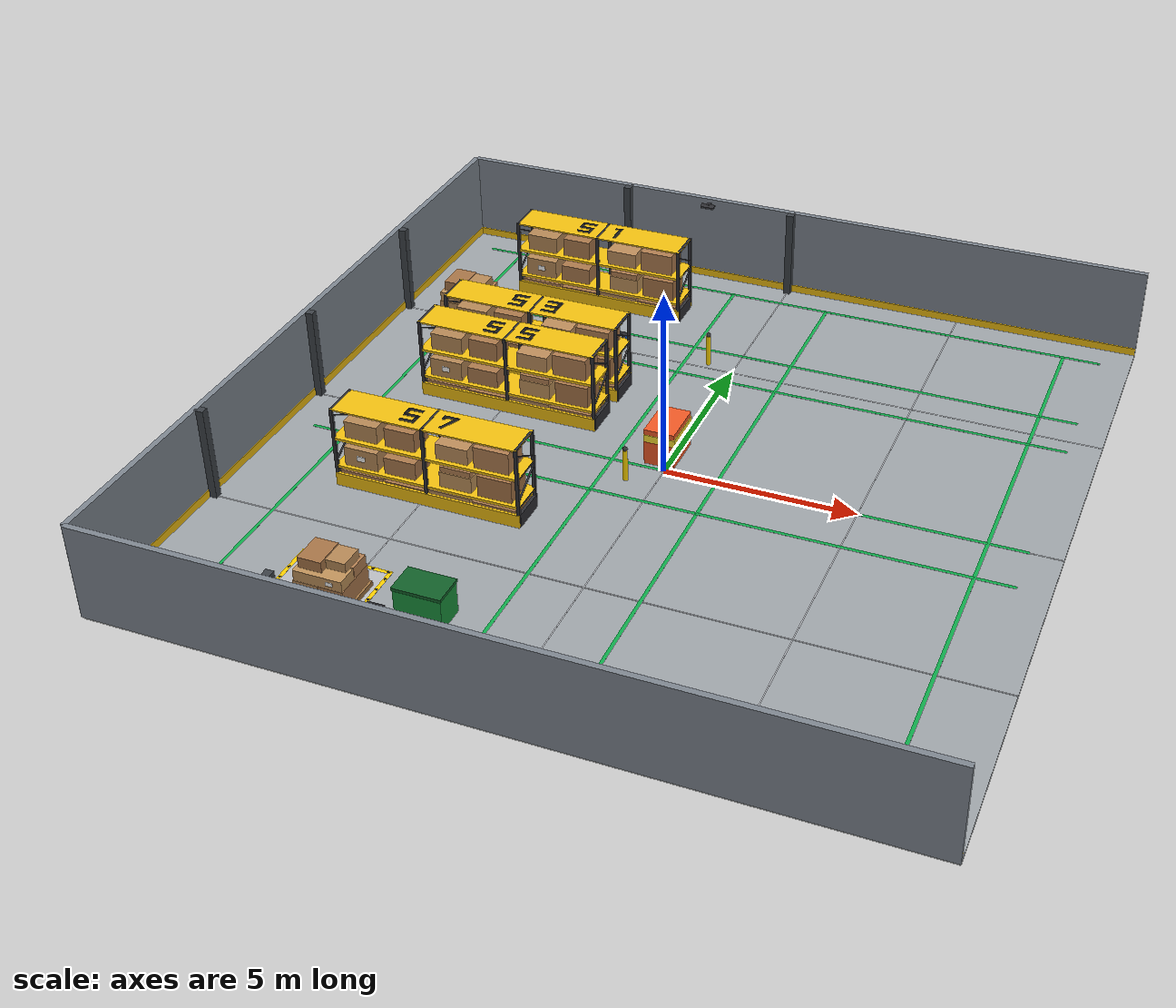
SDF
<sdf version="1.9">
 <world name="warehouse">
  <model name="warehouse_floor">
   <static>true</static>
   <pose>0 0 -0.05 0 0 0</pose>
   <link name="floor_link">
    <collision name="col">
     <geometry><box><size>20.0 20.0 0.1</size></box></geometry>
     <surface><friction><ode><mu>1.0</mu><mu2>1.0</mu2></ode></friction></surface>
    </collision>
    <visual name="slab">
     <geometry><box><size>20.0 20.0 0.1</size></box></geometry>
     <material>
      <ambient>0.55 0.57 0.59 1.0</ambient>
      <diffuse>0.63 0.65 0.67 1.0</diffuse>
      <specular>0.10 0.10 0.10 1.0</specular>
     </material>
    </visual>
    <visual name="grid_h1">
     <pose>0 -5.0 0.052 0 0 0</pose>
     <geometry><box><size>20.0 0.03 0.002</size></box></geometry>
     <material><ambient>0.62 0.63 0.65 1</ambient><diffuse>0.68 0.69 0.71 1</diffuse></material>
    </visual>
    <visual name="grid_h2">
     <pose>0 0.0 0.052 0 0 0</pose>
     <geometry><box><size>20.0 0.03 0.002</size></box></geometry>
     <material><ambient>0.62 0.63 0.65 1</ambient><diffuse>0.68 0.69 0.71 1</diffuse></material>
    </visual>
    <visual name="grid_h3">
     <pose>0 5.0 0.052 0 0 0</pose>
     <geometry><box><size>20.0 0.03 0.002</size></box></geometry>
     <material><ambient>0.62 0.63 0.65 1</ambient><diffuse>0.68 0.69 0.71 1</diffuse></material>
    </visual>
    <visual name="grid_v1">
     <pose>-5.0 0 0.052 0 0 0</pose>
     <geometry><box><size>0.03 20.0 0.002</size></box></geometry>
     <material><ambient>0.62 0.63 0.65 1</ambient><diffuse>0.68 0.69 0.71 1</diffuse></material>
    </visual>
    <visual name="grid_v2">
     <pose>0.0 0 0.052 0 0 0</pose>
     <geometry><box><size>0.03 20.0 0.002</size></box></geometry>
     <material><ambient>0.62 0.63 0.65 1</ambient><diffuse>0.68 0.69 0.71 1</diffuse></material>
    </visual>
    <visual name="grid_v3">
     <pose>5.0 0 0.052 0 0 0</pose>
     <geometry><box><size>0.03 20.0 0.002</size></box></geometry>
     <material><ambient>0.62 0.63 0.65 1</ambient><diffuse>0.68 0.69 0.71 1</diffuse></material>
    </visual>
    <visual name="lane_a1_t">
     <pose>0 9.1 0.055 0 0 0</pose>
     <geometry><box><size>18.4 0.09 0.002</size></box></geometry>
     <material><ambient>0.04 0.52 0.22 1</ambient><diffuse>0.06 0.68 0.30 1</diffuse></material>
    </visual>
    <visual name="lane_a1_b">
     <pose>0 5.9 0.055 0 0 0</pose>
     <geometry><box><size>18.4 0.09 0.002</size></box></geometry>
     <material><ambient>0.04 0.52 0.22 1</ambient><diffuse>0.06 0.68 0.30 1</diffuse></material>
    </visual>
    <visual name="lane_a2_t">
     <pose>0 4.5 0.055 0 0 0</pose>
     <geometry><box><size>18.4 0.09 0.002</size></box></geometry>
     <material><ambient>0.04 0.52 0.22 1</ambient><diffuse>0.06 0.68 0.30 1</diffuse></material>
    </visual>
    <visual name="lane_a2_b">
     <pose>0 0.0 0.055 0 0 0</pose>
     <geometry><box><size>18.4 0.09 0.002</size></box></geometry>
     <material><ambient>0.04 0.52 0.22 1</ambient><diffuse>0.06 0.68 0.30 1</diffuse></material>
    </visual>
    <visual name="lane_a3_t">
     <pose>0 -1.4 0.055 0 0 0</pose>
     <geometry><box><size>18.4 0.09 0.002</size></box></geometry>
     <material><ambient>0.04 0.52 0.22 1</ambient><diffuse>0.06 0.68 0.30 1</diffuse></material>
    </visual>
    <visual name="lane_cv_l">
     <pose>-1.4 0 0.055 0 0 0</pose>
     <geometry><box><size>0.09 18.2 0.002</size></box></geometry>
     <material><ambient>0.04 0.52 0.22 1</ambient><diffuse>0.06 0.68 0.30 1</diffuse></material>
    </visual>
    <visual name="lane_cv_r">
     <pose>1.4 0 0.055 0 0 0</pose>
     <geometry><box><size>0.09 18.2 0.002</size></box></geometry>
     <material><ambient>0.04 0.52 0.22 1</ambient><diffuse>0.06 0.68 0.30 1</diffuse></material>
    </visual>
    <visual name="lane_bp_w">
     <pose>-8.2 0 0.055 0 0 0</pose>
     <geometry><box><size>0.09 18.2 0.002</size></box></geometry>
     <material><ambient>0.04 0.52 0.22 1</ambient><diffuse>0.06 0.68 0.30 1</diffuse></material>
    </visual>
    <visual name="lane_bp_e">
     <pose>8.2 0 0.055 0 0 0</pose>
     <geometry><box><size>0.09 18.2 0.002</size></box></geometry>
     <material><ambient>0.04 0.52 0.22 1</ambient><diffuse>0.06 0.68 0.30 1</diffuse></material>
    </visual>
   </link>
  </model>
  <model name="north_wall">
   <static>true</static>
   <pose>0 10 1.25 0 0 0</pose>
   <link name="link">
    <collision name="col"><geometry><box><size>20.0 0.15 2.5</size></box></geometry></collision>
    <visual name="vis">
     <geometry><box><size>20.0 0.15 2.5</size></box></geometry>
     <material><ambient>0.40 0.43 0.46 1</ambient><diffuse>0.50 0.53 0.57 1</diffuse></material>
    </visual>
    <visual name="skirt">
     <pose>0 -0.08 -1.15 0 0 0</pose>
     <geometry><box><size>20.0 0.025 0.22</size></box></geometry>
     <material><ambient>0.88 0.68 0.04 1</ambient><diffuse>0.96 0.76 0.06 1</diffuse></material>
    </visual>
   </link>
  </model>
  <model name="south_wall">
   <static>true</static>
   <pose>0 -10 1.25 0 0 0</pose>
   <link name="link">
    <collision name="col"><geometry><box><size>20.0 0.15 2.5</size></box></geometry></collision>
    <visual name="vis">
     <geometry><box><size>20.0 0.15 2.5</size></box></geometry>
     <material><ambient>0.40 0.43 0.46 1</ambient><diffuse>0.50 0.53 0.57 1</diffuse></material>
    </visual>
    <visual name="skirt">
     <pose>0 0.08 -1.15 0 0 0</pose>
     <geometry><box><size>20.0 0.025 0.22</size></box></geometry>
     <material><ambient>0.88 0.68 0.04 1</ambient><diffuse>0.96 0.76 0.06 1</diffuse></material>
    </visual>
   </link>
  </model>
  <model name="west_wall">
   <static>true</static>
   <pose>-10.0 0 1.25 0 0 0</pose>
   <link name="link">
    <collision name="col"><geometry><box><size>0.15 20.0 2.5</size></box></geometry></collision>
    <visual name="vis">
     <geometry><box><size>0.15 20.0 2.5</size></box></geometry>
     <material><ambient>0.40 0.43 0.46 1</ambient><diffuse>0.50 0.53 0.57 1</diffuse></material>
    </visual>
    <visual name="skirt">
     <pose>0.08 0 -1.15 0 0 0</pose>
     <geometry><box><size>0.025 20.0 0.22</size></box></geometry>
     <material><ambient>0.88 0.68 0.04 1</ambient><diffuse>0.96 0.76 0.06 1</diffuse></material>
    </visual>
   </link>
  </model>
  <model name="pillar_n_l">
   <static>true</static>
   <pose>-5.0 9.85 1.25 0 0 0</pose>
   <link name="link">
    <visual name="vis">
     <geometry><box><size>0.20 0.25 2.5</size></box></geometry>
     <material><ambient>0.18 0.20 0.22 1</ambient><diffuse>0.24 0.26 0.28 1</diffuse></material>
    </visual>
   </link>
  </model>
  <model name="pillar_n_c">
   <static>true</static>
   <pose>0.0 9.85 1.25 0 0 0</pose>
   <link name="link">
    <visual name="vis">
     <geometry><box><size>0.20 0.25 2.5</size></box></geometry>
     <material><ambient>0.18 0.20 0.22 1</ambient><diffuse>0.24 0.26 0.28 1</diffuse></material>
    </visual>
   </link>
  </model>
  <model name="pillar_s_l">
   <static>true</static>
   <pose>-5.0 -9.85 1.25 0 0 0</pose>
   <link name="link">
    <visual name="vis">
     <geometry><box><size>0.20 0.25 2.5</size></box></geometry>
     <material><ambient>0.18 0.20 0.22 1</ambient><diffuse>0.24 0.26 0.28 1</diffuse></material>
    </visual>
   </link>
  </model>
  <model name="pillar_w_n">
   <static>true</static>
   <pose>-9.85 5.00 1.25 0 0 0</pose>
   <link name="link">
    <visual name="vis">
     <geometry><box><size>0.25 0.20 2.5</size></box></geometry>
     <material><ambient>0.18 0.20 0.22 1</ambient><diffuse>0.24 0.26 0.28 1</diffuse></material>
    </visual>
   </link>
  </model>
  <model name="pillar_w_s">
   <static>true</static>
   <pose>-9.85 -5.00 1.25 0 0 0</pose>
   <link name="link">
    <visual name="vis">
     <geometry><box><size>0.25 0.20 2.5</size></box></geometry>
     <material><ambient>0.18 0.20 0.22 1</ambient><diffuse>0.24 0.26 0.28 1</diffuse></material>
    </visual>
   </link>
  </model>
  <model name="pillar_w_c">
   <static>true</static>
   <pose>-9.85 0.0 1.25 0 0 0</pose>
   <link name="link">
    <visual name="vis">
     <geometry><box><size>0.25 0.20 2.5</size></box></geometry>
     <material><ambient>0.18 0.20 0.22 1</ambient><diffuse>0.24 0.26 0.28 1</diffuse></material>
    </visual>
   </link>
  </model>
  <model name="fixture_wall_n1">
   <static>true</static>
   <pose>-2.5 9.92 2.35 0 0 0</pose>
   <link name="link">
    <visual name="bracket">
     <pose>0 -0.06 0 0 0 0</pose>
     <geometry><box><size>0.12 0.12 0.08</size></box></geometry>
     <material><ambient>0.12 0.12 0.14 1</ambient><diffuse>0.18 0.18 0.20 1</diffuse></material>
    </visual>
    <visual name="lamp">
     <pose>0 -0.14 -0.02 0.3 0 0</pose>
     <geometry><box><size>0.40 0.14 0.06</size></box></geometry>
     <material><ambient>0.12 0.12 0.14 1</ambient><diffuse>0.18 0.18 0.20 1</diffuse></material>
    </visual>
    <visual name="led_strip">
     <pose>0 -0.14 -0.05 0.3 0 0</pose>
     <geometry><box><size>0.36 0.10 0.01</size></box></geometry>
     <material>
      <ambient>0.9 0.9 0.85 1</ambient>
      <diffuse>1.0 1.0 0.9 1</diffuse>
      <emissive>0.95 0.95 0.85 1</emissive>
     </material>
    </visual>
   </link>
  </model>
  <model name="fixture_wall_s1">
   <static>true</static>
   <pose>-2.5 -9.92 2.35 0 0 3.14159</pose>
   <link name="link">
    <visual name="bracket">
     <pose>0 -0.06 0 0 0 0</pose>
     <geometry><box><size>0.12 0.12 0.08</size></box></geometry>
     <material><ambient>0.12 0.12 0.14 1</ambient><diffuse>0.18 0.18 0.20 1</diffuse></material>
    </visual>
    <visual name="lamp">
     <pose>0 -0.14 -0.02 0.3 0 0</pose>
     <geometry><box><size>0.40 0.14 0.06</size></box></geometry>
     <material><ambient>0.12 0.12 0.14 1</ambient><diffuse>0.18 0.18 0.20 1</diffuse></material>
    </visual>
    <visual name="led_strip">
     <pose>0 -0.14 -0.05 0.3 0 0</pose>
     <geometry><box><size>0.36 0.10 0.01</size></box></geometry>
     <material>
      <ambient>0.9 0.9 0.85 1</ambient>
      <diffuse>1.0 1.0 0.9 1</diffuse>
      <emissive>0.95 0.95 0.85 1</emissive>
     </material>
    </visual>
   </link>
  </model>
  <include><uri>model://shelf</uri><name>shelf_rack_NW1</name><pose>-4.8 7.5 0 0 0 0</pose></include>
  <include><uri>model://shelf</uri><name>shelf_rack_NW2</name><pose>-4.8 3.0 0 0 0 0</pose></include>
  <include><uri>model://shelf</uri><name>shelf_rack_SW2</name><pose>-4.8 1.5 0 0 0 0</pose></include>
  <include><uri>model://shelf</uri><name>shelf_rack_SW1</name><pose>-4.8 -3.0 0 0 0 0</pose></include>
  <include><uri>model://pallet_stack</uri><name>pallet_tower_1</name><pose>-5.2 -7.3 0 0 0 0</pose></include>
  <include><uri>model://pallet_stack</uri><name>pallet_tower_3</name><pose>-8.0 5.25 0 0 0 0</pose></include>
  <include>
   <uri>model://dumpster</uri>
   <name>green_dumpster_container</name>
   <pose>-2.8 -7.3 0 0 0 0</pose>
  </include>
  <model name="bollard_l1">
   <static>true</static>
   <pose>-0.75 5.2 0.45 0 0 0</pose>
   <link name="link">
    <collision name="col">
     <geometry><cylinder><radius>0.06</radius><length>0.9</length></cylinder></geometry>
    </collision>
    <visual name="vis">
     <geometry><cylinder><radius>0.06</radius><length>0.9</length></cylinder></geometry>
     <material><ambient>0.95 0.78 0.0 1</ambient><diffuse>1.0 0.84 0.0 1</diffuse></material>
    </visual>
    <visual name="cap">
     <pose>0 0 0.46 0 0 0</pose>
     <geometry><sphere><radius>0.065</radius></sphere></geometry>
     <material><ambient>0.15 0.15 0.15 1</ambient><diffuse>0.20 0.20 0.20 1</diffuse></material>
    </visual>
   </link>
  </model>
  <model name="bollard_l2">
   <static>true</static>
   <pose>-0.75 -0.7 0.45 0 0 0</pose>
   <link name="link">
    <collision name="col">
     <geometry><cylinder><radius>0.06</radius><length>0.9</length></cylinder></geometry>
    </collision>
    <visual name="vis">
     <geometry><cylinder><radius>0.06</radius><length>0.9</length></cylinder></geometry>
     <material><ambient>0.95 0.78 0.0 1</ambient><diffuse>1.0 0.84 0.0 1</diffuse></material>
    </visual>
    <visual name="cap">
     <pose>0 0 0.46 0 0 0</pose>
     <geometry><sphere><radius>0.065</radius></sphere></geometry>
     <material><ambient>0.15 0.15 0.15 1</ambient><diffuse>0.20 0.20 0.20 1</diffuse></material>
    </visual>
   </link>
  </model>
  <model name="sign_P2">
   <static>true</static>
   <pose>-5.5 -7.0 0.006 0 0 0</pose>
   <link name="link">
    <visual name="p2_sv">
     <pose>-0.18 0 0 0 0 0</pose>
     <geometry><box><size>0.11 0.64 0.0015</size></box></geometry>
     <material><ambient>0.02 0.70 0.25 1</ambient><diffuse>0.04 0.88 0.32 1</diffuse></material>
    </visual>
    <visual name="p2_th">
     <pose>0.02 0.265 0 0 0 0</pose>
     <geometry><box><size>0.31 0.11 0.0015</size></box></geometry>
     <material><ambient>0.02 0.70 0.25 1</ambient><diffuse>0.04 0.88 0.32 1</diffuse></material>
    </visual>
    <visual name="p2_mh">
     <pose>0.02 0.00 0 0 0 0</pose>
     <geometry><box><size>0.31 0.11 0.0015</size></box></geometry>
     <material><ambient>0.02 0.70 0.25 1</ambient><diffuse>0.04 0.88 0.32 1</diffuse></material>
    </visual>
    <visual name="p2_rv">
     <pose>0.13 0.132 0 0 0 0</pose>
     <geometry><box><size>0.11 0.375 0.0015</size></box></geometry>
     <material><ambient>0.02 0.70 0.25 1</ambient><diffuse>0.04 0.88 0.32 1</diffuse></material>
    </visual>
   </link>
  </model>
  <model name="sign_S1">
   <static>true</static>
   <pose>-4.8 7.5 2.201 0 0 0</pose>
   <link name="link">
    <visual name="s1_s_top">
     <pose>-0.50 0.24 0 0 0 0</pose>
     <geometry><box><size>0.42 0.10 0.0015</size></box></geometry>
     <material><ambient>0.06 0.06 0.06 1</ambient><diffuse>0.10 0.10 0.10 1</diffuse></material>
    </visual>
    <visual name="s1_s_tlv">
     <pose>-0.66 0.12 0 0 0 0</pose>
     <geometry><box><size>0.10 0.28 0.0015</size></box></geometry>
     <material><ambient>0.06 0.06 0.06 1</ambient><diffuse>0.10 0.10 0.10 1</diffuse></material>
    </visual>
    <visual name="s1_s_mid">
     <pose>-0.50 0 0 0 0 0</pose>
     <geometry><box><size>0.42 0.10 0.0015</size></box></geometry>
     <material><ambient>0.06 0.06 0.06 1</ambient><diffuse>0.10 0.10 0.10 1</diffuse></material>
    </visual>
    <visual name="s1_s_brv">
     <pose>-0.34 -0.12 0 0 0 0</pose>
     <geometry><box><size>0.10 0.28 0.0015</size></box></geometry>
     <material><ambient>0.06 0.06 0.06 1</ambient><diffuse>0.10 0.10 0.10 1</diffuse></material>
    </visual>
    <visual name="s1_s_bot">
     <pose>-0.50 -0.24 0 0 0 0</pose>
     <geometry><box><size>0.42 0.10 0.0015</size></box></geometry>
     <material><ambient>0.06 0.06 0.06 1</ambient><diffuse>0.10 0.10 0.10 1</diffuse></material>
    </visual>
    <visual name="s1_1_v">
     <pose>0.45 0 0 0 0 0</pose>
     <geometry><box><size>0.10 0.58 0.0015</size></box></geometry>
     <material><ambient>0.06 0.06 0.06 1</ambient><diffuse>0.10 0.10 0.10 1</diffuse></material>
    </visual>
    <visual name="s1_1_sf">
     <pose>0.37 0.23 0 0 0 0</pose>
     <geometry><box><size>0.18 0.08 0.0015</size></box></geometry>
     <material><ambient>0.06 0.06 0.06 1</ambient><diffuse>0.10 0.10 0.10 1</diffuse></material>
    </visual>
   </link>
  </model>
  <model name="sign_S3">
   <static>true</static>
   <pose>-4.8 3.0 2.201 0 0 0</pose>
   <link name="link">
    <visual name="s3_s_top">
     <pose>-0.50 0.24 0 0 0 0</pose>
     <geometry><box><size>0.42 0.10 0.0015</size></box></geometry>
     <material><ambient>0.06 0.06 0.06 1</ambient><diffuse>0.10 0.10 0.10 1</diffuse></material>
    </visual>
    <visual name="s3_s_tlv">
     <pose>-0.66 0.12 0 0 0 0</pose>
     <geometry><box><size>0.10 0.28 0.0015</size></box></geometry>
     <material><ambient>0.06 0.06 0.06 1</ambient><diffuse>0.10 0.10 0.10 1</diffuse></material>
    </visual>
    <visual name="s3_s_mid">
     <pose>-0.50 0 0 0 0 0</pose>
     <geometry><box><size>0.42 0.10 0.0015</size></box></geometry>
     <material><ambient>0.06 0.06 0.06 1</ambient><diffuse>0.10 0.10 0.10 1</diffuse></material>
    </visual>
    <visual name="s3_s_brv">
     <pose>-0.34 -0.12 0 0 0 0</pose>
     <geometry><box><size>0.10 0.28 0.0015</size></box></geometry>
     <material><ambient>0.06 0.06 0.06 1</ambient><diffuse>0.10 0.10 0.10 1</diffuse></material>
    </visual>
    <visual name="s3_s_bot">
     <pose>-0.50 -0.24 0 0 0 0</pose>
     <geometry><box><size>0.42 0.10 0.0015</size></box></geometry>
     <material><ambient>0.06 0.06 0.06 1</ambient><diffuse>0.10 0.10 0.10 1</diffuse></material>
    </visual>
    <visual name="s3_3_th">
     <pose>0.45 0.24 0 0 0 0</pose>
     <geometry><box><size>0.42 0.10 0.0015</size></box></geometry>
     <material><ambient>0.06 0.06 0.06 1</ambient><diffuse>0.10 0.10 0.10 1</diffuse></material>
    </visual>
    <visual name="s3_3_trv">
     <pose>0.61 0.12 0 0 0 0</pose>
     <geometry><box><size>0.10 0.28 0.0015</size></box></geometry>
     <material><ambient>0.06 0.06 0.06 1</ambient><diffuse>0.10 0.10 0.10 1</diffuse></material>
    </visual>
    <visual name="s3_3_mh">
     <pose>0.45 0 0 0 0 0</pose>
     <geometry><box><size>0.42 0.10 0.0015</size></box></geometry>
     <material><ambient>0.06 0.06 0.06 1</ambient><diffuse>0.10 0.10 0.10 1</diffuse></material>
    </visual>
    <visual name="s3_3_brv">
     <pose>0.61 -0.12 0 0 0 0</pose>
     <geometry><box><size>0.10 0.28 0.0015</size></box></geometry>
     <material><ambient>0.06 0.06 0.06 1</ambient><diffuse>0.10 0.10 0.10 1</diffuse></material>
    </visual>
    <visual name="s3_3_bh">
     <pose>0.45 -0.24 0 0 0 0</pose>
     <geometry><box><size>0.42 0.10 0.0015</size></box></geometry>
     <material><ambient>0.06 0.06 0.06 1</ambient><diffuse>0.10 0.10 0.10 1</diffuse></material>
    </visual>
   </link>
  </model>
  <model name="sign_S5">
   <static>true</static>
   <pose>-4.8 1.5 2.201 0 0 0</pose>
   <link name="link">
    <visual name="s5_s_top">
     <pose>-0.50 0.24 0 0 0 0</pose>
     <geometry><box><size>0.42 0.10 0.0015</size></box></geometry>
     <material><ambient>0.06 0.06 0.06 1</ambient><diffuse>0.10 0.10 0.10 1</diffuse></material>
    </visual>
    <visual name="s5_s_tlv">
     <pose>-0.66 0.12 0 0 0 0</pose>
     <geometry><box><size>0.10 0.28 0.0015</size></box></geometry>
     <material><ambient>0.06 0.06 0.06 1</ambient><diffuse>0.10 0.10 0.10 1</diffuse></material>
    </visual>
    <visual name="s5_s_mid">
     <pose>-0.50 0 0 0 0 0</pose>
     <geometry><box><size>0.42 0.10 0.0015</size></box></geometry>
     <material><ambient>0.06 0.06 0.06 1</ambient><diffuse>0.10 0.10 0.10 1</diffuse></material>
    </visual>
    <visual name="s5_s_brv">
     <pose>-0.34 -0.12 0 0 0 0</pose>
     <geometry><box><size>0.10 0.28 0.0015</size></box></geometry>
     <material><ambient>0.06 0.06 0.06 1</ambient><diffuse>0.10 0.10 0.10 1</diffuse></material>
    </visual>
    <visual name="s5_s_bot">
     <pose>-0.50 -0.24 0 0 0 0</pose>
     <geometry><box><size>0.42 0.10 0.0015</size></box></geometry>
     <material><ambient>0.06 0.06 0.06 1</ambient><diffuse>0.10 0.10 0.10 1</diffuse></material>
    </visual>
    <visual name="s5_5_th">
     <pose>0.45 0.24 0 0 0 0</pose>
     <geometry><box><size>0.42 0.10 0.0015</size></box></geometry>
     <material><ambient>0.06 0.06 0.06 1</ambient><diffuse>0.10 0.10 0.10 1</diffuse></material>
    </visual>
    <visual name="s5_5_tlv">
     <pose>0.29 0.12 0 0 0 0</pose>
     <geometry><box><size>0.10 0.28 0.0015</size></box></geometry>
     <material><ambient>0.06 0.06 0.06 1</ambient><diffuse>0.10 0.10 0.10 1</diffuse></material>
    </visual>
    <visual name="s5_5_mh">
     <pose>0.45 0 0 0 0 0</pose>
     <geometry><box><size>0.42 0.10 0.0015</size></box></geometry>
     <material><ambient>0.06 0.06 0.06 1</ambient><diffuse>0.10 0.10 0.10 1</diffuse></material>
    </visual>
    <visual name="s5_5_brv">
     <pose>0.61 -0.12 0 0 0 0</pose>
     <geometry><box><size>0.10 0.28 0.0015</size></box></geometry>
     <material><ambient>0.06 0.06 0.06 1</ambient><diffuse>0.10 0.10 0.10 1</diffuse></material>
    </visual>
    <visual name="s5_5_bh">
     <pose>0.45 -0.24 0 0 0 0</pose>
     <geometry><box><size>0.42 0.10 0.0015</size></box></geometry>
     <material><ambient>0.06 0.06 0.06 1</ambient><diffuse>0.10 0.10 0.10 1</diffuse></material>
    </visual>
   </link>
  </model>
  <model name="sign_S7">
   <static>true</static>
   <pose>-4.8 -3.0 2.201 0 0 0</pose>
   <link name="link">
    <visual name="s7_s_top">
     <pose>-0.50 0.24 0 0 0 0</pose>
     <geometry><box><size>0.42 0.10 0.0015</size></box></geometry>
     <material><ambient>0.06 0.06 0.06 1</ambient><diffuse>0.10 0.10 0.10 1</diffuse></material>
    </visual>
    <visual name="s7_s_tlv">
     <pose>-0.66 0.12 0 0 0 0</pose>
     <geometry><box><size>0.10 0.28 0.0015</size></box></geometry>
     <material><ambient>0.06 0.06 0.06 1</ambient><diffuse>0.10 0.10 0.10 1</diffuse></material>
    </visual>
    <visual name="s7_s_mid">
     <pose>-0.50 0 0 0 0 0</pose>
     <geometry><box><size>0.42 0.10 0.0015</size></box></geometry>
     <material><ambient>0.06 0.06 0.06 1</ambient><diffuse>0.10 0.10 0.10 1</diffuse></material>
    </visual>
    <visual name="s7_s_brv">
     <pose>-0.34 -0.12 0 0 0 0</pose>
     <geometry><box><size>0.10 0.28 0.0015</size></box></geometry>
     <material><ambient>0.06 0.06 0.06 1</ambient><diffuse>0.10 0.10 0.10 1</diffuse></material>
    </visual>
    <visual name="s7_s_bot">
     <pose>-0.50 -0.24 0 0 0 0</pose>
     <geometry><box><size>0.42 0.10 0.0015</size></box></geometry>
     <material><ambient>0.06 0.06 0.06 1</ambient><diffuse>0.10 0.10 0.10 1</diffuse></material>
    </visual>
    <visual name="s7_7_th">
     <pose>0.45 0.24 0 0 0 0</pose>
     <geometry><box><size>0.42 0.10 0.0015</size></box></geometry>
     <material><ambient>0.06 0.06 0.06 1</ambient><diffuse>0.10 0.10 0.10 1</diffuse></material>
    </visual>
    <visual name="s7_7_sf">
     <pose>0.29 0.18 0 0 0 0</pose>
     <geometry><box><size>0.10 0.12 0.0015</size></box></geometry>
     <material><ambient>0.06 0.06 0.06 1</ambient><diffuse>0.10 0.10 0.10 1</diffuse></material>
    </visual>
    <visual name="s7_7_diag">
     <pose>0.495 0.00 0 0 0 -0.446</pose>
     <geometry><box><size>0.10 0.54 0.0015</size></box></geometry>
     <material><ambient>0.06 0.06 0.06 1</ambient><diffuse>0.10 0.10 0.10 1</diffuse></material>
    </visual>
   </link>
  </model>
  <include><uri>model://pickup_station</uri><name>pickup_P2</name><pose>-5.5 -7.0 0 0 0 0</pose></include>
  <include>
   <uri>model://obstacle</uri>
   <name>blocked_aisle_obstacle</name>
   <pose>-0.2 0.75 0 0 0 0</pose>
  </include>
  <include><uri>model://amr_blue</uri><name>amr_blue</name><pose>-3.5 5.25 0.05 0 0 0</pose></include>
 </world>
</sdf>
